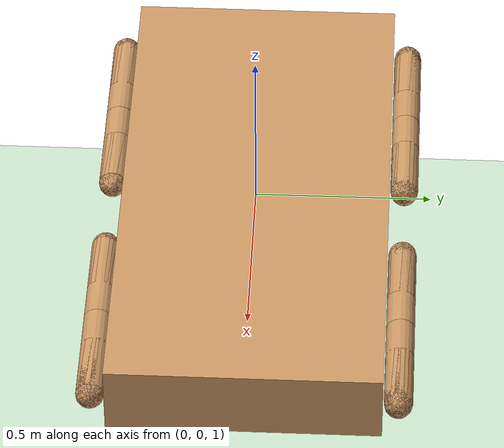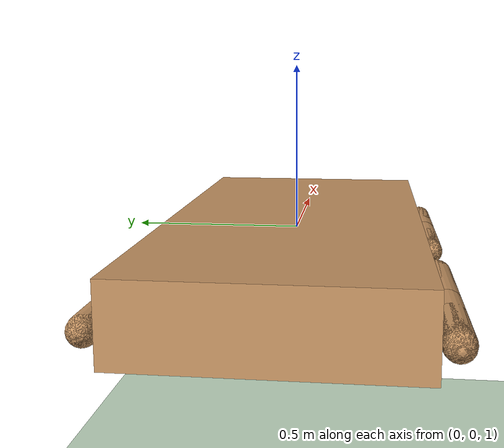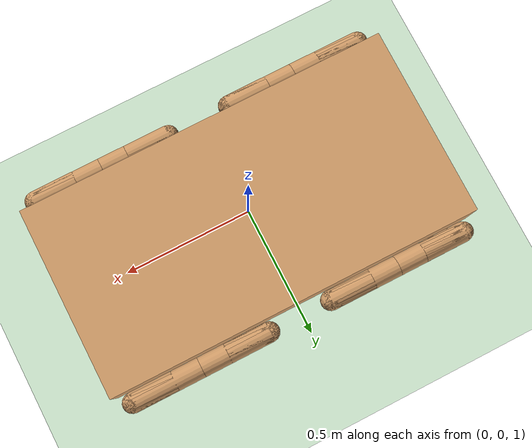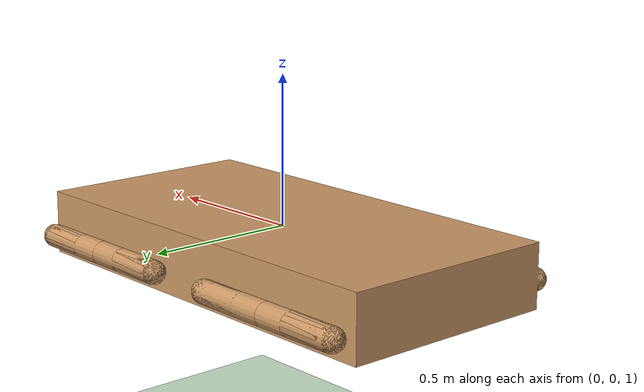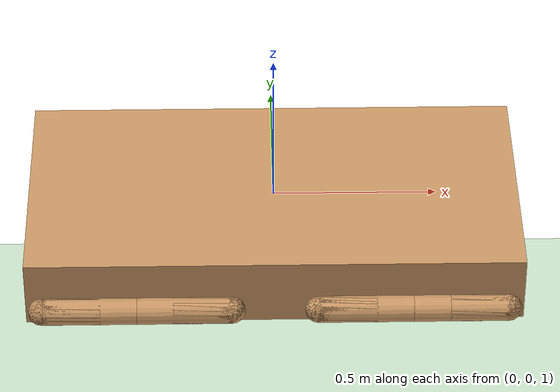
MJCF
<mujoco model="phonebot">
	<!-- everything at 10x scale -->
	<compiler angle="radian" coordinate="local" inertiafromgeom="true"/>
	<option integrator="Euler" timestep="0.0001" gravity="0 0 -98.1" iterations='10000'/>

	<visual>
		<map znear="0.01"/>
	</visual>

	<default>
		<joint armature="0.1" damping="1.0" limited="true"/>
		<geom conaffinity="0" condim="3" density="5.0" friction="1 0.5 0.5" margin="0.01" rgba="0.8 0.6 0.4 1"/>
	</default>

	<asset>
		<texture builtin="gradient" height="100" rgb1="1 1 1" rgb2="0 0 0" type="skybox" width="100"/>
		<texture builtin="flat" height="1278" mark="cross" markrgb="1 1 1" name="texgeom" random="0.01" rgb1="0.8 0.6 0.4" rgb2="0.8 0.6 0.4" type="cube" width="127"/>
		<texture builtin="checker" height="100" name="texplane" rgb1="0 0 0" rgb2="0.8 0.8 0.8" type="2d" width="100"/>
		<material name="MatPlane" reflectance="0.5" shininess="1" specular="1" texrepeat="60 60" texture="texplane"/>
		<material name="geom" texture="texgeom" texuniform="true"/>
	</asset>

	<worldbody>
		<light cutoff="100" diffuse="1 1 1" dir="-0 0 -1.3" directional="true" exponent="1" pos="0 0 1.3" specular=".1 .1 .1"/>
		<geom conaffinity="1" condim="3" material="MatPlane" name="floor" pos="0 0 0" rgba="0.8 0.9 0.8 1" size="40 40 40" type="plane"/>
		<body name="torso" pos="0 0 1.0">

			<inertial pos="0 0 0" mass="138."/>
			<geom name="torso_geom" pos="0 0 -0.0706" size="0.75 0.38175 0.10806" type="box"/>

			<geom name="fl_stop" pos="0.41418 0.425 -0.10148" size="0.04" type="sphere"/>
			<geom name="fr_stop" pos="0.41418 -0.425 -0.10148" size="0.04" type="sphere"/>
			<geom name="bl_stop" pos="-0.41418 0.425 -0.10148" size="0.04" type="sphere"/>
			<geom name="br_stop" pos="-0.41418 -0.425 -0.10148" size="0.04" type="sphere"/>

			<!-- UNCOMMENT TO ENABLE GRAVITY -->
			<body name="fl_leg" pos="0.41418 0.425 -0.10148">
				<body pos="-0.110 0 0">
					<joint axis="0 1 0" name="fl_ma" pos="0.0 0.0 0.0" range="-1.5707 0" type="hinge"/>
					<geom fromto="0.0 0.0 0.0 -0.175 0.0 0.0" name="fl_1a_geom" size="0.04" type="capsule"/>
					<body pos="-0.175 0.0 0">
						<joint axis="0 1 0" name="fl_ja" pos="0.0 0.0 0.0" limited="false" type="hinge"/>
						<geom fromto="0.0 0.0 0.0 0.285 0.0 0.0" name="fl_2a_geom" size="0.04" type="capsule"/>
						<body pos="0.285 0.0 0.0" name="fl_ep_a">
							<geom name="fl_ep_a_geom" size="0.02" type="sphere"/>
						</body>
					</body>
				</body>
				<body pos="0.110 0 0">
					<joint axis="0 -1 0" name="fl_mb" pos="0.0 0.0 0.0" range="-1.5707 0" type="hinge"/>
					<geom fromto="0.0 0.0 0.0 0.175 0.0 0.0" name="fl_1b_geom" size="0.04" type="capsule"/>
					<body pos="0.175 0.0 0">
						<joint axis="0 -1 0" name="fl_jb" pos="0.0 0.0 0.0" limited="false" type="hinge"/>
						<geom fromto="0.0 0.0 0.0 -0.285 0.0 0.0" name="fl_2b_geom" size="0.04" type="capsule"/>
						<body pos="-0.285 0.0 0.0" name="fl_ep_b">
							<geom name="fl_ep_b_geom" size="0.02" type="sphere"/>
						</body>
					</body>
				</body>
			</body>

			<body name="fr_leg" pos="0.41418 -0.425 -0.10148">
				<body pos="-0.110 0 0">
					<joint axis="0 1 0" name="fr_ma" pos="0.0 0.0 0.0" range="-1.5707 0" type="hinge"/>
					<geom fromto="0.0 0.0 0.0 -0.175 0.0 0.0" name="fr_1a_geom" size="0.04" type="capsule"/>
					<body pos="-0.175 0.0 0">
						<joint axis="0 1 0" name="fr_ja" pos="0.0 0.0 0.0" limited="false" type="hinge"/>
						<geom fromto="0.0 0.0 0.0 0.285 0.0 0.0" name="fr_2a_geom" size="0.04" type="capsule"/>
						<body pos="0.285 0.0 0.0" name="fr_ep_a">
							<geom name="fr_ep_a_geom" size="0.02" type="sphere"/>
						</body>
					</body>
				</body>
				<body pos="0.110 0 0">
					<joint axis="0 -1 0" name="fr_mb" pos="0.0 0.0 0.0" range="-1.5707 0" type="hinge"/>
					<geom fromto="0.0 0.0 0.0 0.175 0.0 0.0" name="fr_1b_geom" size="0.04" type="capsule"/>
					<body pos="0.175 0.0 0">
						<joint axis="0 -1 0" name="fr_jb" pos="0.0 0.0 0.0" limited="false" type="hinge"/>
						<geom fromto="0.0 0.0 0.0 -0.285 0.0 0.0" name="fr_2b_geom" size="0.04" type="capsule"/>
						<body pos="-0.285 0.0 0.0" name="fr_ep_b">
							<geom name="fr_ep_b_geom" size="0.02" type="sphere"/>
						</body>
					</body>
				</body>
			</body>

			<body name="bl_leg" pos="-0.41418 0.425 -0.10148">
				<body pos="-0.110 0 0">
					<joint axis="0 1 0" name="bl_ma" pos="0.0 0.0 0.0" range="-1.5707 0" type="hinge"/>
					<geom fromto="0.0 0.0 0.0 -0.175 0.0 0.0" name="bl_1a_geom" size="0.04" type="capsule"/>
					<body pos="-0.175 0.0 0">
						<joint axis="0 1 0" name="bl_ja" pos="0.0 0.0 0.0" limited="false" type="hinge"/>
						<geom fromto="0.0 0.0 0.0 0.285 0.0 0.0" name="bl_2a_geom" size="0.04" type="capsule"/>
						<body pos="0.285 0.0 0.0" name="bl_ep_a">
							<geom name="bl_ep_a_geom" size="0.02" type="sphere"/>
						</body>
					</body>
				</body>
				<body pos="0.110 0 0">
					<joint axis="0 -1 0" name="bl_mb" pos="0.0 0.0 0.0" range="-1.5707 0" type="hinge"/>
					<geom fromto="0.0 0.0 0.0 0.175 0.0 0.0" name="bl_1b_geom" size="0.04" type="capsule"/>
					<body pos="0.175 0.0 0">
						<joint axis="0 -1 0" name="bl_jb" pos="0.0 0.0 0.0" limited="false" type="hinge"/>
						<geom fromto="0.0 0.0 0.0 -0.285 0.0 0.0" name="bl_2b_geom" size="0.04" type="capsule"/>
						<body pos="-0.285 0.0 0.0" name="bl_ep_b">
							<geom name="bl_ep_b_geom" size="0.02" type="sphere"/>
						</body>
					</body>
				</body>
			</body>

			<body name="br_leg" pos="-0.41418 -0.425 -0.10148">
				<body pos="-0.110 0 0">
					<joint axis="0 1 0" name="br_ma" pos="0.0 0.0 0.0" range="-1.5707 0" type="hinge"/>
					<geom fromto="0.0 0.0 0.0 -0.175 0.0 0.0" name="br_1a_geom" size="0.04" type="capsule"/>
					<body pos="-0.175 0.0 0">
						<joint axis="0 1 0" name="br_ja" pos="0.0 0.0 0.0" limited="false" type="hinge"/>
						<geom fromto="0.0 0.0 0.0 0.285 0.0 0.0" name="br_2a_geom" size="0.04" type="capsule"/>
						<body pos="0.285 0.0 0.0" name="br_ep_a">
							<geom name="br_ep_a_geom" size="0.02" type="sphere"/>
						</body>
					</body>
				</body>
				<body pos="0.110 0 0">
					<joint axis="0 -1 0" name="br_mb" pos="0.0 0.0 0.0" range="-1.5707 0" type="hinge"/>
					<geom fromto="0.0 0.0 0.0 0.175 0.0 0.0" name="br_1b_geom" size="0.04" type="capsule"/>
					<body pos="0.175 0.0 0">
						<joint axis="0 -1 0" name="br_jb" pos="0.0 0.0 0.0" limited="false" type="hinge"/>
						<geom fromto="0.0 0.0 0.0 -0.285 0.0 0.0" name="br_2b_geom" size="0.04" type="capsule"/>
						<body pos="-0.285 0.0 0.0" name="br_ep_b">
							<geom name="br_ep_b_geom" size="0.02" type="sphere"/>
						</body>
					</body>
				</body>
			</body>
		</body>
	</worldbody>
    <equality>
		<connect name="fl_ep" body1="fl_ep_a" body2="fl_ep_b" anchor="0 0 0" active="true"/>
		<connect name="fr_ep" body1="fr_ep_a" body2="fr_ep_b" anchor="0 0 0" active="true"/>
		<connect name="bl_ep" body1="bl_ep_a" body2="bl_ep_b" anchor="0 0 0" active="true"/>
		<connect name="br_ep" body1="br_ep_a" body2="br_ep_b" anchor="0 0 0" active="true"/>
    </equality>
	<contact>
		<pair geom1="fl_stop" geom2="fl_ep_a_geom" margin="0.1"/>
		<pair geom1="fl_stop" geom2="fl_ep_b_geom" margin="0.1"/>
		<pair geom1="fr_stop" geom2="fr_ep_a_geom" margin="0.1"/>
		<pair geom1="fr_stop" geom2="fr_ep_b_geom" margin="0.1"/>
		<pair geom1="bl_stop" geom2="bl_ep_a_geom" margin="0.1"/>
		<pair geom1="bl_stop" geom2="bl_ep_b_geom" margin="0.1"/>
		<pair geom1="br_stop" geom2="br_ep_a_geom" margin="0.1"/>
		<pair geom1="br_stop" geom2="br_ep_b_geom" margin="0.1"/>
	</contact>
	<actuator>
		<motor ctrllimited="true" ctrlrange="-1.0 1.0" joint="fl_ma" gear="500"/>
		<motor ctrllimited="true" ctrlrange="-1.0 1.0" joint="fl_mb" gear="500"/>
		<motor ctrllimited="true" ctrlrange="-1.0 1.0" joint="fr_ma" gear="500"/>
		<motor ctrllimited="true" ctrlrange="-1.0 1.0" joint="fr_mb" gear="500"/>
		<motor ctrllimited="true" ctrlrange="-1.0 1.0" joint="bl_ma" gear="500"/>
		<motor ctrllimited="true" ctrlrange="-1.0 1.0" joint="bl_mb" gear="500"/>
		<motor ctrllimited="true" ctrlrange="-1.0 1.0" joint="br_ma" gear="500"/>
		<motor ctrllimited="true" ctrlrange="-1.0 1.0" joint="br_mb" gear="500"/>

	</actuator>
</mujoco>
